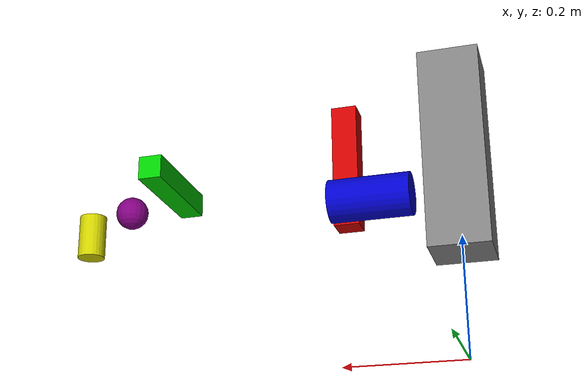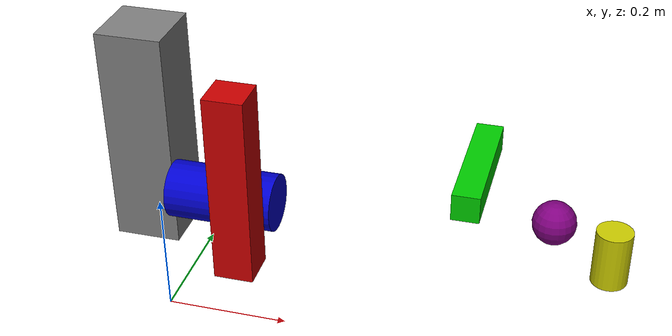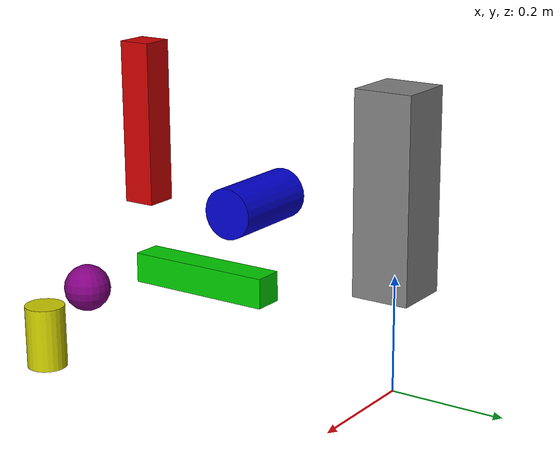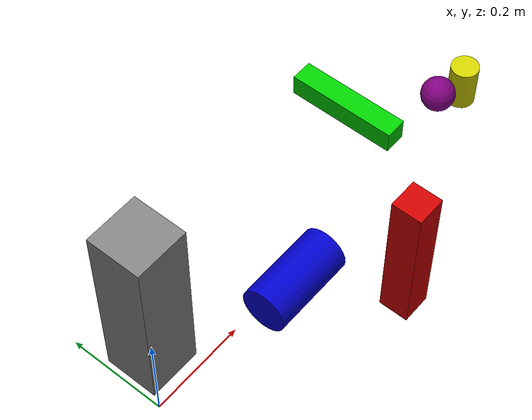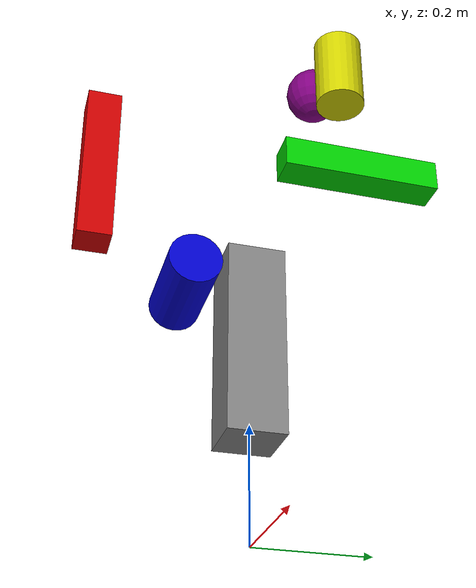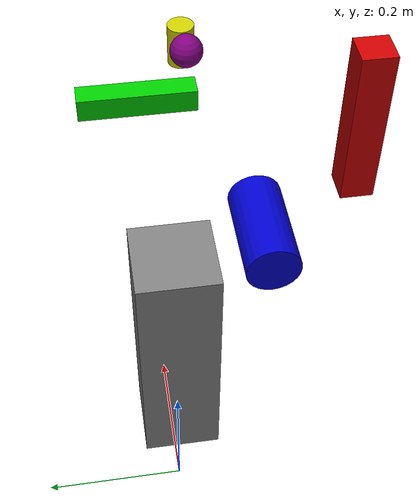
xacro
<?xml version="1.0"?>
<robot xmlns:xacro="http://www.ros.org/wiki/xacro" name="smilei_single_arm">

  <!-- Load parameters from YAML file -->
  <!-- The actual values will be passed from the launch file as arguments -->

  <!-- Define constants -->
  <xacro:property name="PI" value="3.14159265359"/>
  <xacro:property name="PI_2" value="${PI/2}"/>
  <xacro:property name="PI_4" value="${PI/4}"/>

  <!-- Declare arguments with default values -->
  <!-- Neck dimensions -->
  <xacro:arg name="neck_height" default="0.34"/>
  <xacro:property name="neck_height" value="$(arg neck_height)"/>

  <!-- Arm dimensions -->
  <xacro:arg name="base_height" default="0.34"/>
  <xacro:property name="base_height" value="$(arg base_height)"/>

  <xacro:arg name="link0_length" default="0.10"/>
  <xacro:property name="link0_length" value="$(arg link0_length)"/>

  <xacro:arg name="link0_width" default="0.0"/>
  <xacro:property name="link0_width" value="$(arg link0_width)"/>

  <xacro:arg name="link1_length" default="0.15"/>
  <xacro:property name="link1_length" value="$(arg link1_length)"/>

  <xacro:arg name="link1_width" default="-0.30"/>
  <xacro:property name="link1_width" value="$(arg link1_width)"/>

  <xacro:arg name="link2_length" default="0.25"/>
  <xacro:property name="link2_length" value="$(arg link2_length)"/>

  <xacro:arg name="link2_width" default="0.20"/>
  <xacro:property name="link2_width" value="$(arg link2_width)"/>

  <xacro:arg name="link3_length" default="0.2"/>
  <xacro:property name="link3_length" value="$(arg link3_length)"/>

  <xacro:arg name="link4_length" default="-0.08"/>
  <xacro:property name="link4_length" value="$(arg link4_length)"/>

  <xacro:arg name="ee_offset" default="0.0"/>
  <xacro:property name="ee_offset" value="$(arg ee_offset)"/>

  <!-- Joint limits -->
  <xacro:arg name="joint0_lower" default="-3.14159265359"/>
  <xacro:property name="joint0_lower" value="$(arg joint0_lower)"/>

  <xacro:arg name="joint0_upper" default="3.14159265359"/>
  <xacro:property name="joint0_upper" value="$(arg joint0_upper)"/>

  <xacro:arg name="joint1_lower" default="-1.57079632679"/>
  <xacro:property name="joint1_lower" value="$(arg joint1_lower)"/>

  <xacro:arg name="joint1_upper" default="1.57079632679"/>
  <xacro:property name="joint1_upper" value="$(arg joint1_upper)"/>

  <xacro:arg name="joint2_lower" default="-2.0"/>
  <xacro:property name="joint2_lower" value="$(arg joint2_lower)"/>

  <xacro:arg name="joint2_upper" default="2.0"/>
  <xacro:property name="joint2_upper" value="$(arg joint2_upper)"/>

  <xacro:arg name="joint3_lower" default="-3.14159265359"/>
  <xacro:property name="joint3_lower" value="$(arg joint3_lower)"/>

  <xacro:arg name="joint3_upper" default="3.14159265359"/>
  <xacro:property name="joint3_upper" value="$(arg joint3_upper)"/>

  <!-- Joint dynamics -->
  <xacro:arg name="joint0_effort" default="100.0"/>
  <xacro:property name="joint0_effort" value="$(arg joint0_effort)"/>

  <xacro:arg name="joint0_velocity" default="1.0"/>
  <xacro:property name="joint0_velocity" value="$(arg joint0_velocity)"/>

  <xacro:arg name="joint1_effort" default="100.0"/>
  <xacro:property name="joint1_effort" value="$(arg joint1_effort)"/>

  <xacro:arg name="joint1_velocity" default="1.0"/>
  <xacro:property name="joint1_velocity" value="$(arg joint1_velocity)"/>

  <xacro:arg name="joint2_effort" default="80.0"/>
  <xacro:property name="joint2_effort" value="$(arg joint2_effort)"/>

  <xacro:arg name="joint2_velocity" default="1.0"/>
  <xacro:property name="joint2_velocity" value="$(arg joint2_velocity)"/>

  <xacro:arg name="joint3_effort" default="50.0"/>
  <xacro:property name="joint3_effort" value="$(arg joint3_effort)"/>

  <xacro:arg name="joint3_velocity" default="2.0"/>
  <xacro:property name="joint3_velocity" value="$(arg joint3_velocity)"/>

  <!-- Base Link -->
  <link name="base_link" />

  <!-- Neck Base Joint - Fixed -->
  <joint name="neck_base_joint" type="fixed">
    <parent link="base_link"/>
    <child link="neck_base"/>
    <origin xyz="0 0 ${neck_height}" rpy="0 0 0"/>
  </joint>

  <!-- Base Link (Neck Base) - Fixed reference frame -->
  <link name="neck_base">
    <visual>
      <geometry>
        <box size="0.1 0.1 ${base_height}"/>
      </geometry>
      <origin xyz="0 0 0" rpy="0 0 0"/>
      <material name="gray">
        <color rgba="0.5 0.5 0.5 1.0"/>
      </material>
    </visual>
    <inertial>
      <mass value="0.5"/>
      <inertia ixx="0.001" ixy="0.0" ixz="0.0" iyy="0.001" iyz="0.0" izz="0.001"/>
    </inertial>
  </link>

  <!-- Joint 1 - Shoulder Pan (rotation around Z axis) -->
  <joint name="joint_0" type="revolute">
    <parent link="neck_base"/>
    <child link="link_1"/>
    <origin xyz="${link0_length} 0 0" rpy="${PI_2} 0 ${PI_2}"/>
    <axis xyz="0 0 1"/>
    <limit lower="${joint0_lower}" upper="${joint0_upper}" effort="${joint0_effort}" velocity="${joint0_velocity}"/>
  </joint>

  <link name="link_1">
    <visual>
      <geometry>
        <cylinder radius="0.04" length="${link1_length}"/>
      </geometry>
      <origin xyz="${link1_width/2} 0 ${link1_length/2}" rpy="0 0 0"/>
      <material name="blue">
        <color rgba="0.0 0.0 0.8 1.0"/>
      </material>
    </visual>
    <inertial>
      <mass value="0.3"/>
      <origin xyz="${link1_width/2} 0 ${link1_length/2}" rpy="0 0 0"/>
      <inertia ixx="0.001" ixy="0.0" ixz="0.0" iyy="0.001" iyz="0.0" izz="0.0005"/>
    </inertial>
  </link>

  <!-- Joint 1 - Shoulder Lift (rotation around Y axis) -->
  <joint name="joint_1" type="revolute">
    <parent link="link_1"/>
    <child link="link_2"/>
    <origin xyz="${link1_width} 0 ${link1_length}" rpy="${PI_2} 0 ${PI_2}"/>
    <axis xyz="0 0 1"/>
    <limit lower="${joint1_lower}" upper="${joint1_upper}" effort="${joint1_effort}" velocity="${joint1_velocity}"/>
  </joint>

  <link name="link_2">
    <visual>
      <geometry>
        <box size="${link2_length} 0.05 0.05"/>
      </geometry>
      <origin xyz="${link2_length/2} 0 0" rpy="0 0 0"/>
      <material name="red">
        <color rgba="0.8 0.0 0.0 1.0"/>
      </material>
    </visual>
    <inertial>
      <mass value="0.4"/>
      <origin xyz="${link2_length/2} 0 0" rpy="0 0 0"/>
      <inertia ixx="0.001" ixy="0.0" ixz="0.0" iyy="0.002" iyz="0.0" izz="0.002"/>
    </inertial>
  </link>

  <!-- Joint 2 - Elbow (rotation around Y axis) -->
  <joint name="joint_2" type="revolute">
    <parent link="link_2"/>
    <child link="link_3"/>
    <origin xyz="0 ${link2_length} ${link2_width}" rpy="${-PI_2} ${-PI_2} 0"/>
    <axis xyz="0 0 1"/>
    <limit lower="${joint2_lower}" upper="${joint2_upper}" effort="${joint2_effort}" velocity="${joint2_velocity}"/>
  </joint>

  <link name="link_3">
    <visual>
      <geometry>
        <box size="${link3_length} 0.04 0.04"/>
      </geometry>
      <origin xyz="${link3_length/2} 0 0" rpy="0 0 0"/>
      <material name="green">
        <color rgba="0.0 0.8 0.0 1.0"/>
      </material>
    </visual>
    <inertial>
      <mass value="0.3"/>
      <origin xyz="${link3_length/2} 0 0" rpy="0 0 0"/>
      <inertia ixx="0.0005" ixy="0.0" ixz="0.0" iyy="0.001" iyz="0.0" izz="0.001"/>
    </inertial>
  </link>

  <!-- Joint 4 - Wrist Rotation (rotation around X axis) -->
  <joint name="joint_3" type="revolute">
    <parent link="link_3"/>
    <child link="link_4"/>
    <origin xyz="0 0 ${link3_length}" rpy="${PI_2} 0 ${PI_2}"/>
    <axis xyz="0 0 1"/>
    <limit lower="${joint3_lower}" upper="${joint3_upper}" effort="${joint3_effort}" velocity="${joint3_velocity}"/>
  </joint>

  <link name="link_4">
    <visual>
      <geometry>
        <cylinder radius="0.025" length="${link4_length}"/>
      </geometry>
      <origin xyz="${link4_length/2} 0 0" rpy="0 ${PI_2} 0"/>
      <material name="yellow">
        <color rgba="0.8 0.8 0.0 1.0"/>
      </material>
    </visual>
    <inertial>
      <mass value="0.2"/>
      <origin xyz="${link4_length/2} 0 0" rpy="0 0 0"/>
      <inertia ixx="0.0003" ixy="0.0" ixz="0.0" iyy="0.0003" iyz="0.0" izz="0.0002"/>
    </inertial>
  </link>

  <!-- End Effector Joint - Fixed -->
  <joint name="end_effector_joint" type="fixed">
    <parent link="link_4"/>
    <child link="end_effector"/>
    <origin xyz="0 ${link4_length + ee_offset} 0" rpy="${PI_2} 0 ${PI_2}"/>
  </joint>

  <link name="end_effector">
    <visual>
      <geometry>
        <sphere radius="0.03"/>
      </geometry>
      <origin xyz="0 0 0" rpy="0 0 0"/>
      <material name="purple">
        <color rgba="0.5 0.0 0.5 1.0"/>
      </material>
    </visual>
    <inertial>
      <mass value="0.1"/>
      <inertia ixx="0.0001" ixy="0.0" ixz="0.0" iyy="0.0001" iyz="0.0" izz="0.0001"/>
    </inertial>
  </link>

</robot>
